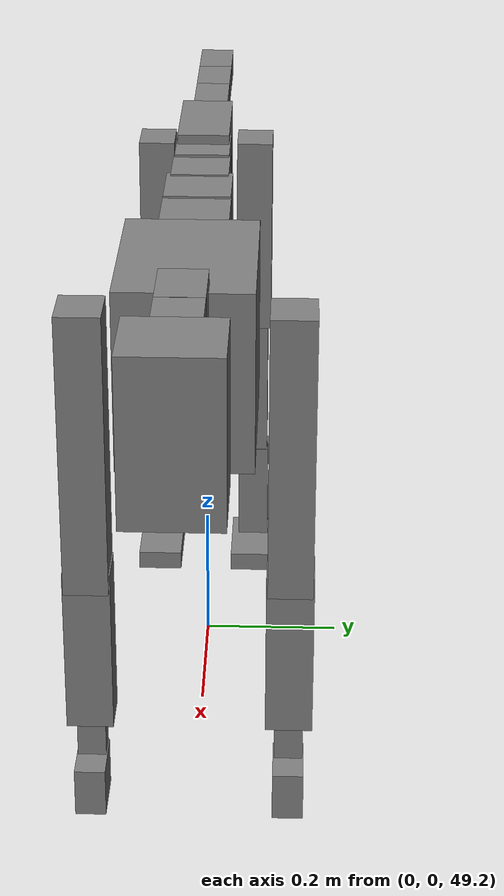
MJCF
<mujoco model="dog">

    <default>
        <joint armature="0.02" stiffness="1" damping="0.2" limited="true"/>
        <geom condim="3" friction="1 0.05 0.05" margin="0.01"/>
        <motor ctrllimited="true" ctrlrange="-1.0 1.0" forcelimited="true" gear="50"/>
    </default>

    <compiler inertiafromgeom="true" angle="radian"/>

    <option timestep="0.016" iterations="50" tolerance="1e-10" solver="Newton" jacobian="dense" cone="pyramidal"/>

    <size nconmax="20000" njmax="60000" nstack="5000000"/>
    <visual>
        <map force="0.1" zfar="30"/>
        <rgba haze="0.15 0.25 0.35 1"/>
        <quality shadowsize="2048"/>
        <global offwidth="800" offheight="800"/>
    </visual>

    <asset>
        <texture type="skybox" builtin="gradient" rgb1="0.3 0.5 0.7" rgb2="0 0 0" width="512" height="512"/>
        <texture name="texplane" type="2d" builtin="checker" rgb1=".2 .3 .4" rgb2=".1 0.15 0.2" width="512" height="512"
                 mark="cross" markrgb=".8 .8 .8"/>
        <texture name="texgeom" type="cube" builtin="flat" mark="cross" width="127" height="1278" rgb1="0.8 0.6 0.4"
                 rgb2="0.8 0.6 0.4" markrgb="1 1 1" random="0.01"/>

        <material name="matplane" reflectance="0.3" texture="texplane" texrepeat="1 1" texuniform="true"/>
        <material name="matgeom" texture="texgeom" texuniform="true" rgba="0.8 0.6 .4 1"/>
    </asset>

    <worldbody>
        <geom name="floor" pos="0 0 0" size="0 0 .25" type="plane" material="matplane" condim="3"/>

        <light directional="false" diffuse=".2 .2 .2" specular="0 0 0" pos="0 0 5" dir="0 0 -1" castshadow="false"/>
        <light mode="targetbodycom" target="torso" directional="false" diffuse=".8 .8 .8" specular="0.3 0.3 0.3"
               pos="0 0 4.0" dir="0 0 -1"/>

        <body name="root" pos="0 0 50">
            <freejoint name="root_1"/>
            <geom type="box" pos="0 0 -0.02" size="0.0774  0.0358  0.063" density="2030"/>

            <body name="spine1" pos="0.054 0 0">
                <joint name="spine1_y" axis="0 1 0" range="0 0.7" limited="true"/>
                <geom type="box" pos="0.02375 0 -0.03" size="0.04375  0.0375  0.05985" density="2030"/>

                <body name="spine2" pos="0.0612 0 0">
                    <joint name="spine2_y" axis="0 1 0" range="-0.15 0.15" limited="true"/>
                    <geom type="box" pos="0.03555  0  -0.04" size="0.04055  0.039  0.06615" density="2030"/>

                    <body name="spine3" pos="0.0730 0 0">
                        <joint name="spine3_y" axis="0 1 0" range="-0.15 0.15" limited="true"/>
                        <geom type="box" pos="0.03555  0  -0.057" size="0.04555  0.0445  0.081" density="2030"/>

                        <body name="spine4" pos="0.0780 0 0">
                            <joint name="spine4_y" axis="0 1 0" range="-0.15 0.15" limited="true"/>
                            <geom type="box" pos="0.05265  0  -0.07" size="0.05265  0.045  0.09135" density="2030"/>

                            <body name="torso" pos="0.1082 0 0">
                                <joint name="torso_y" axis="0 1 0" range="-0.15 0.15" limited="true"/>
                                <geom type="box" pos="0.11925  0  -0.085" size="0.11925  0.085  0.11745"
                                      density="2030"/>

                                <body name="neck1" pos="0.2160  0   0.0180">
                                    <joint name="neck1_y" axis="0 1 0" range="-1.2  -1" limited="true"/>
                                    <geom type="box" pos="0.0423  0  0" size="0.0423  0.03  0.036" density="2325"/>

                                    <body name="neck2" pos="0.0853  0  0">
                                        <joint name="neck2_y" axis="0 1 0" range="0.1  0" limited="true"/>
                                        <geom type="box" pos="0.0423  0  0" size="0.0423  0.03  0.036" density="2325"/>

                                        <body name="head" pos="0.0853  0  0">
                                            <joint name="head_y" axis="0 1 0" range="-0.3  -0.2" limited="true"/>
                                            <geom type="box" pos="0.0531  0  -0.055" size="0.0531  0.06  0.1044"
                                                  density="4030"/>

                                        </body>
                                    </body>
                                </body>

                                <body name="front_shoulder" pos="0.156  0   -0.0480">
                                    <joint name="front_shoulder_y" axis="0 1 0" range="-1 1.5" limited="true"/>
                                    <geom type="box" pos="0 0.13 -0.1657" size="0.0341  0.0291  0.1923" density="1158"/>
                                    <geom type="box" pos="0 -0.13 -0.1657" size="0.0341  0.0291  0.1923"
                                          density="1158"/>

                                    <body name="front_elbow" pos="0  0  -0.3313">
                                        <joint name="front_elbow_y" axis="0 1 0" range="-2 0" limited="true"/>
                                        <geom type="box" pos="0 0.13 -0.1144" size="0.0300  0.0307  0.1144"
                                              density="1081"/>
                                        <geom type="box" pos="0 -0.13 -0.1144" size="0.0300  0.0307  0.1144"
                                              density="1081"/>

                                        <body name="front_wrist" pos="0  0  -0.2289">
                                            <joint name="front_wrist_y" axis="0 1 0" range="-0.2 0" limited="true"/>
                                            <geom type="box" pos="0 0.13 -0.0340" size="0.0169  0.0188  0.0472"
                                                  density="1664"/>
                                            <geom type="box" pos="0 -0.13 -0.0340" size="0.0169  0.0188  0.0472"
                                                  density="1664"/>

                                            <body name="front_finger_end" pos="0  0  -0.0681">
                                                <joint name="front_finger_y" axis="0 1 0" range="-0.4 1"
                                                       limited="true"/>
                                                <geom type="box" pos="0.0203  0.13  -0.0186"
                                                      size="0.0373  0.0203  0.0336" density="1515"/>
                                                <geom type="box" pos="0.0203  -0.13  -0.0186"
                                                      size="0.0373  0.0203  0.0336" density="1515"/>

                                            </body>

                                        </body>
                                    </body>
                                </body>

                            </body>
                        </body>
                    </body>
                </body>
            </body>

            <body name="back_hip" pos="-0.03 0 -0.018">
                <joint name="back_hip_y" axis="0 1 0" range="-1.5 0.3" limited="true"/>
                <geom type="box" pos="0 0.07 -0.1201" size="0.0320  0.0251  0.1429" density="1154"/>
                <geom type="box" pos="0 -0.07 -0.1201" size="0.0320  0.0251  0.1429" density="1154"/>

                <body name="back_knee" pos="0  0  -0.2402">
                    <joint name="back_knee_y" axis="0 1 0" range="0 2.8" limited="true"/>
                    <geom type="box" pos="0 0.07 -0.1199" size="0.0211  0.0208  0.1354" density="1227"/>
                    <geom type="box" pos="0 -0.07 -0.1199" size="0.0211  0.0208  0.1354" density="1227"/>

                    <body name="back_ankle" pos="0  0  -0.2397">
                        <joint name="back_ankle_y" axis="0 1 0" range="-2.2 0" limited="true"/>
                        <geom type="box" pos="0 0.07 -0.0748" size="0.0223  0.0223  0.0860" density="1284"/>
                        <geom type="box" pos="0 -0.07 -0.0748" size="0.0223  0.0223  0.0860" density="1284"/>

                        <body name="back_toe_end" pos="0  0  -0.1496">
                            <joint name="back_toe_y" axis="0 1 0" range="-0.4 1" limited="true"/>
                            <geom type="box" pos="0.0318  0.07  0.0015" size="0.0582  0.0318  0.0135" density="1515"/>
                            <geom type="box" pos="0.0318  -0.07  0.0015" size="0.0582  0.0318  0.0135" density="1515"/>

                        </body>
                    </body>
                </body>
            </body>

            <body name="tail1" pos="-0.074 0 -0.006">
                <joint name="tail1_y" axis="0 1 0" range="-0.2 0.2" limited="true"/>
                <geom type="box" pos="-0.0536  0  0" size="0.045  0.025  0.0175" density="1587"/>

                <body name="tail2" pos="-0.09 0 0">
                    <joint name="tail2_y" axis="0 1 0" range="-0.2 0.2" limited="true"/>
                    <geom type="box" pos="-0.0536  0  0" size="0.045  0.025  0.0175" density="1587"/>

                    <body name="tail3" pos="-0.09 0 0">
                        <joint name="tail3_y" axis="0 1 0" range="-0.2 0.2" limited="true"/>
                        <geom type="box" pos="-0.0536  0  0" size="0.045  0.025  0.0175" density="1587"/>

                        <body name="tail4" pos="-0.09 0 0">
                            <joint name="tail4_y" axis="0 1 0" range="-0.2 0.2" limited="true"/>
                            <geom type="box" pos="-0.0536  0  0" size="0.045  0.025  0.0175" density="1587"/>

                        </body>
                    </body>
                </body>
            </body>
        </body>
    </worldbody>

    <actuator>
        <motor joint="spine1_y" forcerange="-150 150     "/>
        <motor joint="spine2_y" forcerange="-150 150     "/>
        <motor joint="spine3_y" forcerange="-150 150     "/>
        <motor joint="spine4_y" forcerange="-150 150     "/>
        <motor joint="torso_y" forcerange="-150 150     "/>
        <motor joint="neck1_y" forcerange="-100 100       "/>
        <motor joint="neck2_y" forcerange="-100 100       "/>
        <motor joint="head_y" forcerange="-150 150       "/>
        <motor joint="front_shoulder_y" forcerange="-172.37 121.84"/>
        <motor joint="front_elbow_y" forcerange="-140.59 182.57"/>
        <motor joint="front_wrist_y" forcerange="-57.02 93.55"/>
        <motor joint="front_finger_y" forcerange="-48.07 20.46"/>
        <motor joint="back_hip_y" forcerange="-297.02 237.97"/>
        <motor joint="back_knee_y" forcerange="-221.61 280.95"/>
        <motor joint="back_angle_y" forcerange="-107.26 149.00"/>
        <motor joint="back_toe_y" forcerange="-60.29 113.77"/>
        <motor joint="tail1_y" forcerange="-50 50     "/>
        <motor joint="tail2_y" forcerange="-50 50     "/>
        <motor joint="tail3_y" forcerange="-50 50     "/>
        <motor joint="tail4_y" forcerange="-50 50     "/>
    </actuator>
</mujoco>
